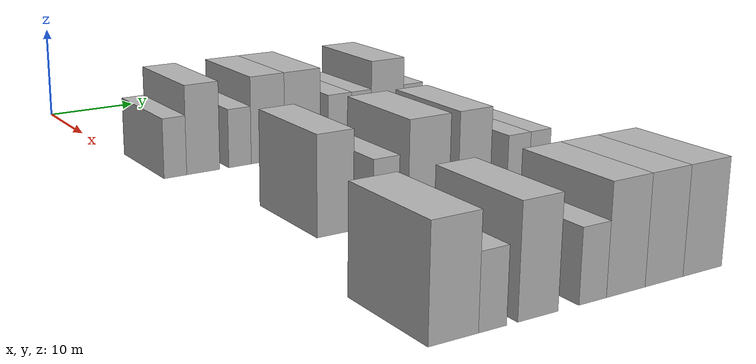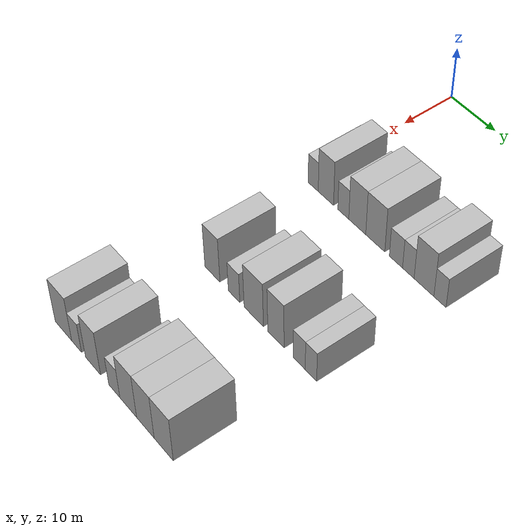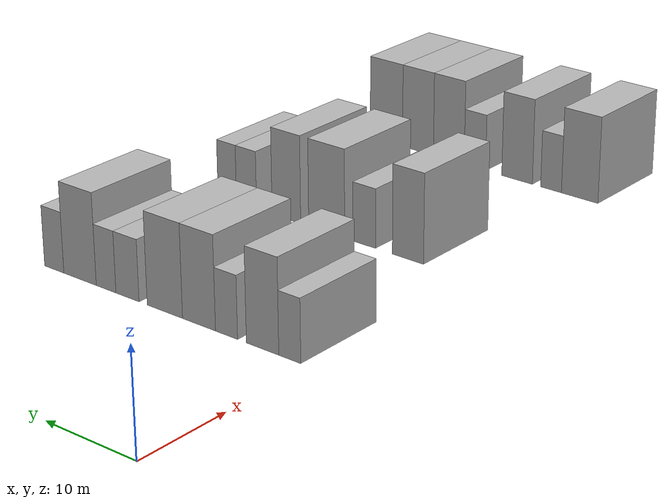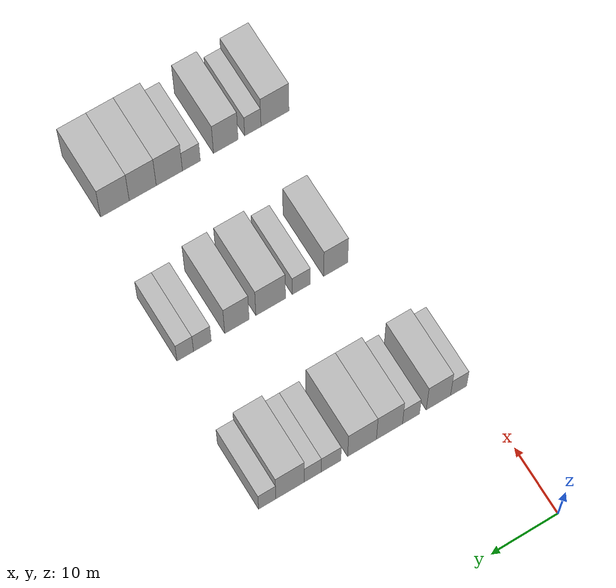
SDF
<sdf version="1.6">
 <world name="default">
  <model name="building_57">
   <static>1</static>
   <pose>25.0000 2.0091 0 0.000000 0.000000 0.000000</pose>
   <link name="link">
    <pose>0 0 3.00 0 0 0</pose>
    <collision name="collision"><geometry><box><size>10.0000 2.4154 6.0000</size></box></geometry></collision>
    <visual name="visual">
     <cast_shadows>0</cast_shadows>
     <geometry><box><size>10.0000 2.4154 6.0000</size></box></geometry>
     <material>
      <script>
       <uri>model://HANNAS_wall/materials/scripts</uri>
       <uri>model://HANNAS_wall/materials/textures</uri>
       <name>vrc/HANNAS_wall</name>
      </script>
     </material>
    </visual>
   </link>
  </model>
  <model name="building_58">
   <static>1</static>
   <pose>25.0000 5.0301 0 0.000000 0.000000 0.000000</pose>
   <link name="link">
    <pose>0 0 4.50 0 0 0</pose>
    <collision name="collision"><geometry><box><size>10.0000 3.6266 9.0000</size></box></geometry></collision>
    <visual name="visual">
     <cast_shadows>0</cast_shadows>
     <geometry><box><size>10.0000 3.6266 9.0000</size></box></geometry>
     <material>
      <script>
       <uri>model://HANNAS_wall/materials/scripts</uri>
       <uri>model://HANNAS_wall/materials/textures</uri>
       <name>vrc/HANNAS_wall</name>
      </script>
     </material>
    </visual>
   </link>
  </model>
  <model name="building_59">
   <static>1</static>
   <pose>25.0000 9.1142 0 0.000000 0.000000 0.000000</pose>
   <link name="link">
    <pose>0 0 3.00 0 0 0</pose>
    <collision name="collision"><geometry><box><size>10.0000 2.5416 6.0000</size></box></geometry></collision>
    <visual name="visual">
     <cast_shadows>0</cast_shadows>
     <geometry><box><size>10.0000 2.5416 6.0000</size></box></geometry>
     <material>
      <script>
       <uri>model://HANNAS_wall/materials/scripts</uri>
       <uri>model://HANNAS_wall/materials/textures</uri>
       <name>vrc/HANNAS_wall</name>
      </script>
     </material>
    </visual>
   </link>
  </model>
  <model name="building_60">
   <static>1</static>
   <pose>25.0000 12.3199 0 0.000000 0.000000 0.000000</pose>
   <link name="link">
    <pose>0 0 4.50 0 0 0</pose>
    <collision name="collision"><geometry><box><size>10.0000 3.8697 9.0000</size></box></geometry></collision>
    <visual name="visual">
     <cast_shadows>0</cast_shadows>
     <geometry><box><size>10.0000 3.8697 9.0000</size></box></geometry>
     <material>
      <script>
       <uri>model://HANNAS_wall/materials/scripts</uri>
       <uri>model://HANNAS_wall/materials/textures</uri>
       <name>vrc/HANNAS_wall</name>
      </script>
     </material>
    </visual>
   </link>
  </model>
  <model name="building_61">
   <static>1</static>
   <pose>25.0000 16.3835 0 0.000000 0.000000 0.000000</pose>
   <link name="link">
    <pose>0 0 4.50 0 0 0</pose>
    <collision name="collision"><geometry><box><size>10.0000 4.2576 9.0000</size></box></geometry></collision>
    <visual name="visual">
     <cast_shadows>0</cast_shadows>
     <geometry><box><size>10.0000 4.2576 9.0000</size></box></geometry>
     <material>
      <script>
       <uri>model://HANNAS_wall/materials/scripts</uri>
       <uri>model://HANNAS_wall/materials/textures</uri>
       <name>vrc/HANNAS_wall</name>
      </script>
     </material>
    </visual>
   </link>
  </model>
  <model name="building_62">
   <static>1</static>
   <pose>25.0000 20.9505 0 0.000000 0.000000 0.000000</pose>
   <link name="link">
    <pose>0 0 3.00 0 0 0</pose>
    <collision name="collision"><geometry><box><size>10.0000 2.8764 6.0000</size></box></geometry></collision>
    <visual name="visual">
     <cast_shadows>0</cast_shadows>
     <geometry><box><size>10.0000 2.8764 6.0000</size></box></geometry>
     <material>
      <script>
       <uri>model://HANNAS_wall/materials/scripts</uri>
       <uri>model://HANNAS_wall/materials/textures</uri>
       <name>vrc/HANNAS_wall</name>
      </script>
     </material>
    </visual>
   </link>
  </model>
  <model name="building_63">
   <static>1</static>
   <pose>25.0000 23.6272 0 0.000000 0.000000 0.000000</pose>
   <link name="link">
    <pose>0 0 3.00 0 0 0</pose>
    <collision name="collision"><geometry><box><size>10.0000 2.4770 6.0000</size></box></geometry></collision>
    <visual name="visual">
     <cast_shadows>0</cast_shadows>
     <geometry><box><size>10.0000 2.4770 6.0000</size></box></geometry>
     <material>
      <script>
       <uri>model://HANNAS_wall/materials/scripts</uri>
       <uri>model://HANNAS_wall/materials/textures</uri>
       <name>vrc/HANNAS_wall</name>
      </script>
     </material>
    </visual>
   </link>
  </model>
  <model name="building_64">
   <static>1</static>
   <pose>25.0000 26.9529 0 0.000000 0.000000 0.000000</pose>
   <link name="link">
    <pose>0 0 4.50 0 0 0</pose>
    <collision name="collision"><geometry><box><size>10.0000 4.1743 9.0000</size></box></geometry></collision>
    <visual name="visual">
     <cast_shadows>0</cast_shadows>
     <geometry><box><size>10.0000 4.1743 9.0000</size></box></geometry>
     <material>
      <script>
       <uri>model://HANNAS_wall/materials/scripts</uri>
       <uri>model://HANNAS_wall/materials/textures</uri>
       <name>vrc/HANNAS_wall</name>
      </script>
     </material>
    </visual>
   </link>
  </model>
  <model name="building_65">
   <static>1</static>
   <pose>25.0000 30.2963 0 0.000000 0.000000 0.000000</pose>
   <link name="link">
    <pose>0 0 3.00 0 0 0</pose>
    <collision name="collision"><geometry><box><size>10.0000 2.5124 6.0000</size></box></geometry></collision>
    <visual name="visual">
     <cast_shadows>0</cast_shadows>
     <geometry><box><size>10.0000 2.5124 6.0000</size></box></geometry>
     <material>
      <script>
       <uri>model://HANNAS_wall/materials/scripts</uri>
       <uri>model://HANNAS_wall/materials/textures</uri>
       <name>vrc/HANNAS_wall</name>
      </script>
     </material>
    </visual>
   </link>
  </model>
  <model name="building_190">
   <static>1</static>
   <pose>47.0000 6.6824 0 0.000000 0.000000 0.000000</pose>
   <link name="link">
    <pose>0 0 4.50 0 0 0</pose>
    <collision name="collision"><geometry><box><size>10.0000 3.6252 9.0000</size></box></geometry></collision>
    <visual name="visual">
     <cast_shadows>0</cast_shadows>
     <geometry><box><size>10.0000 3.6252 9.0000</size></box></geometry>
     <material>
      <script>
       <uri>model://HANNAS_wall/materials/scripts</uri>
       <uri>model://HANNAS_wall/materials/textures</uri>
       <name>vrc/HANNAS_wall</name>
      </script>
     </material>
    </visual>
   </link>
  </model>
  <model name="building_191">
   <static>1</static>
   <pose>47.0000 11.8528 0 0.000000 0.000000 0.000000</pose>
   <link name="link">
    <pose>0 0 3.00 0 0 0</pose>
    <collision name="collision"><geometry><box><size>10.0000 2.7157 6.0000</size></box></geometry></collision>
    <visual name="visual">
     <cast_shadows>0</cast_shadows>
     <geometry><box><size>10.0000 2.7157 6.0000</size></box></geometry>
     <material>
      <script>
       <uri>model://HANNAS_wall/materials/scripts</uri>
       <uri>model://HANNAS_wall/materials/textures</uri>
       <name>vrc/HANNAS_wall</name>
      </script>
     </material>
    </visual>
   </link>
  </model>
  <model name="building_192">
   <static>1</static>
   <pose>47.0000 16.4301 0 0.000000 0.000000 0.000000</pose>
   <link name="link">
    <pose>0 0 4.50 0 0 0</pose>
    <collision name="collision"><geometry><box><size>10.0000 4.4388 9.0000</size></box></geometry></collision>
    <visual name="visual">
     <cast_shadows>0</cast_shadows>
     <geometry><box><size>10.0000 4.4388 9.0000</size></box></geometry>
     <material>
      <script>
       <uri>model://HANNAS_wall/materials/scripts</uri>
       <uri>model://HANNAS_wall/materials/textures</uri>
       <name>vrc/HANNAS_wall</name>
      </script>
     </material>
    </visual>
   </link>
  </model>
  <model name="building_193">
   <static>1</static>
   <pose>47.0000 21.4659 0 0.000000 0.000000 0.000000</pose>
   <link name="link">
    <pose>0 0 4.50 0 0 0</pose>
    <collision name="collision"><geometry><box><size>10.0000 3.6328 9.0000</size></box></geometry></collision>
    <visual name="visual">
     <cast_shadows>0</cast_shadows>
     <geometry><box><size>10.0000 3.6328 9.0000</size></box></geometry>
     <material>
      <script>
       <uri>model://HANNAS_wall/materials/scripts</uri>
       <uri>model://HANNAS_wall/materials/textures</uri>
       <name>vrc/HANNAS_wall</name>
      </script>
     </material>
    </visual>
   </link>
  </model>
  <model name="building_194">
   <static>1</static>
   <pose>47.0000 26.5936 0 0.000000 0.000000 0.000000</pose>
   <link name="link">
    <pose>0 0 3.00 0 0 0</pose>
    <collision name="collision"><geometry><box><size>10.0000 2.6227 6.0000</size></box></geometry></collision>
    <visual name="visual">
     <cast_shadows>0</cast_shadows>
     <geometry><box><size>10.0000 2.6227 6.0000</size></box></geometry>
     <material>
      <script>
       <uri>model://HANNAS_wall/materials/scripts</uri>
       <uri>model://HANNAS_wall/materials/textures</uri>
       <name>vrc/HANNAS_wall</name>
      </script>
     </material>
    </visual>
   </link>
  </model>
  <model name="building_195">
   <static>1</static>
   <pose>47.0000 29.1236 0 0.000000 0.000000 0.000000</pose>
   <link name="link">
    <pose>0 0 3.00 0 0 0</pose>
    <collision name="collision"><geometry><box><size>10.0000 2.4373 6.0000</size></box></geometry></collision>
    <visual name="visual">
     <cast_shadows>0</cast_shadows>
     <geometry><box><size>10.0000 2.4373 6.0000</size></box></geometry>
     <material>
      <script>
       <uri>model://HANNAS_wall/materials/scripts</uri>
       <uri>model://HANNAS_wall/materials/textures</uri>
       <name>vrc/HANNAS_wall</name>
      </script>
     </material>
    </visual>
   </link>
  </model>
  <model name="building_307">
   <static>1</static>
   <pose>69.0000 2.4243 0 0.000000 0.000000 0.000000</pose>
   <link name="link">
    <pose>0 0 4.50 0 0 0</pose>
    <collision name="collision"><geometry><box><size>10.0000 4.2875 9.0000</size></box></geometry></collision>
    <visual name="visual">
     <cast_shadows>0</cast_shadows>
     <geometry><box><size>10.0000 4.2875 9.0000</size></box></geometry>
     <material>
      <script>
       <uri>model://HANNAS_wall/materials/scripts</uri>
       <uri>model://HANNAS_wall/materials/textures</uri>
       <name>vrc/HANNAS_wall</name>
      </script>
     </material>
    </visual>
   </link>
  </model>
  <model name="building_308">
   <static>1</static>
   <pose>69.0000 5.8132 0 0.000000 0.000000 0.000000</pose>
   <link name="link">
    <pose>0 0 3.00 0 0 0</pose>
    <collision name="collision"><geometry><box><size>10.0000 2.4902 6.0000</size></box></geometry></collision>
    <visual name="visual">
     <cast_shadows>0</cast_shadows>
     <geometry><box><size>10.0000 2.4902 6.0000</size></box></geometry>
     <material>
      <script>
       <uri>model://HANNAS_wall/materials/scripts</uri>
       <uri>model://HANNAS_wall/materials/textures</uri>
       <name>vrc/HANNAS_wall</name>
      </script>
     </material>
    </visual>
   </link>
  </model>
  <model name="building_309">
   <static>1</static>
   <pose>69.0000 9.9305 0 0.000000 0.000000 0.000000</pose>
   <link name="link">
    <pose>0 0 4.50 0 0 0</pose>
    <collision name="collision"><geometry><box><size>10.0000 3.7444 9.0000</size></box></geometry></collision>
    <visual name="visual">
     <cast_shadows>0</cast_shadows>
     <geometry><box><size>10.0000 3.7444 9.0000</size></box></geometry>
     <material>
      <script>
       <uri>model://HANNAS_wall/materials/scripts</uri>
       <uri>model://HANNAS_wall/materials/textures</uri>
       <name>vrc/HANNAS_wall</name>
      </script>
     </material>
    </visual>
   </link>
  </model>
  <model name="building_310">
   <static>1</static>
   <pose>69.0000 15.1529 0 0.000000 0.000000 0.000000</pose>
   <link name="link">
    <pose>0 0 3.00 0 0 0</pose>
    <collision name="collision"><geometry><box><size>10.0000 2.7005 6.0000</size></box></geometry></collision>
    <visual name="visual">
     <cast_shadows>0</cast_shadows>
     <geometry><box><size>10.0000 2.7005 6.0000</size></box></geometry>
     <material>
      <script>
       <uri>model://HANNAS_wall/materials/scripts</uri>
       <uri>model://HANNAS_wall/materials/textures</uri>
       <name>vrc/HANNAS_wall</name>
      </script>
     </material>
    </visual>
   </link>
  </model>
  <model name="building_311">
   <static>1</static>
   <pose>69.0000 18.4785 0 0.000000 0.000000 0.000000</pose>
   <link name="link">
    <pose>0 0 4.50 0 0 0</pose>
    <collision name="collision"><geometry><box><size>10.0000 3.9506 9.0000</size></box></geometry></collision>
    <visual name="visual">
     <cast_shadows>0</cast_shadows>
     <geometry><box><size>10.0000 3.9506 9.0000</size></box></geometry>
     <material>
      <script>
       <uri>model://HANNAS_wall/materials/scripts</uri>
       <uri>model://HANNAS_wall/materials/textures</uri>
       <name>vrc/HANNAS_wall</name>
      </script>
     </material>
    </visual>
   </link>
  </model>
  <model name="building_312">
   <static>1</static>
   <pose>69.0000 22.4781 0 0.000000 0.000000 0.000000</pose>
   <link name="link">
    <pose>0 0 4.50 0 0 0</pose>
    <collision name="collision"><geometry><box><size>10.0000 4.0486 9.0000</size></box></geometry></collision>
    <visual name="visual">
     <cast_shadows>0</cast_shadows>
     <geometry><box><size>10.0000 4.0486 9.0000</size></box></geometry>
     <material>
      <script>
       <uri>model://HANNAS_wall/materials/scripts</uri>
       <uri>model://HANNAS_wall/materials/textures</uri>
       <name>vrc/HANNAS_wall</name>
      </script>
     </material>
    </visual>
   </link>
  </model>
  <model name="building_313">
   <static>1</static>
   <pose>69.0000 26.6514 0 0.000000 0.000000 0.000000</pose>
   <link name="link">
    <pose>0 0 4.50 0 0 0</pose>
    <collision name="collision"><geometry><box><size>10.0000 4.2982 9.0000</size></box></geometry></collision>
    <visual name="visual">
     <cast_shadows>0</cast_shadows>
     <geometry><box><size>10.0000 4.2982 9.0000</size></box></geometry>
     <material>
      <script>
       <uri>model://HANNAS_wall/materials/scripts</uri>
       <uri>model://HANNAS_wall/materials/textures</uri>
       <name>vrc/HANNAS_wall</name>
      </script>
     </material>
    </visual>
   </link>
  </model>
 </world>
</sdf>
